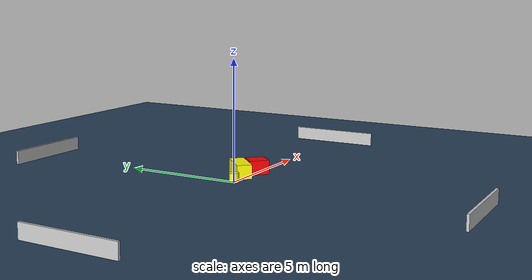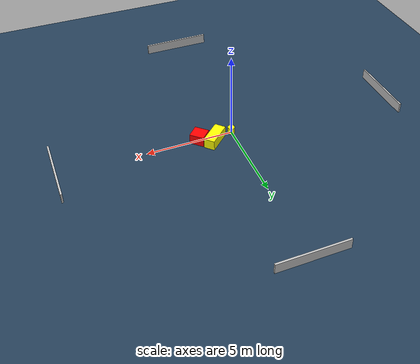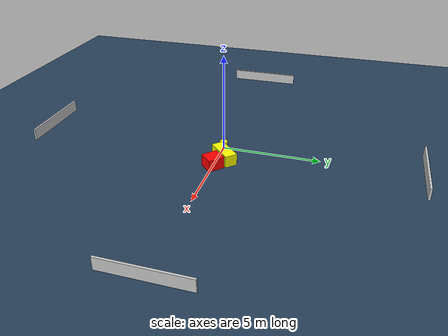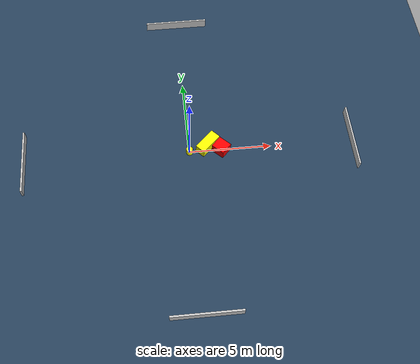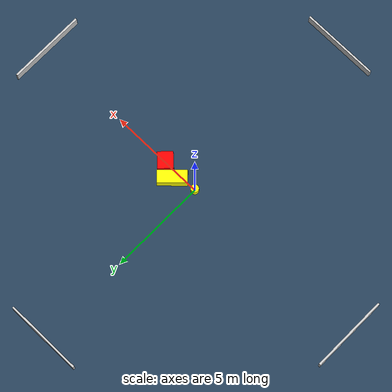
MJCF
<?xml version="1.0" ?>
<mujoco model="generated_environment">
  <option timestep="0.01" integrator="RK4" cone="elliptic"/>
  <default>
    <geom density="1"/>
  </default>
  <asset>
    <texture builtin="gradient" height="3072" name="skybox" rgb1="0.3 0.5 0.7" rgb2="0 0 0" type="skybox" width="512"/>
    <texture builtin="checker" height="300" name="groundplane" rgb1="0.2 0.3 0.4" rgb2="0.1 0.2 0.3" type="2d" width="300"/>
    <material name="groundplane" reflectance="0.2" texrepeat="5 5" texture="groundplane"/>
  </asset>
  <worldbody>
    <light dir="0 0 -1" directional="true" pos="0 0 1.5"/>
    <geom condim="3" friction="0.5 0.005 0.001" material="groundplane" name="floor" pos="0 0 0" size="0 0 0.05" type="plane"/>
    <body name="walls">
      <geom name="wall_1" condim="4" pos="-10.0 0.0 0.3" rgba="0.800000011920929 0.800000011920929 0.800000011920929 1.0" size="0.05 2.0 0.3" type="box"/>
      <geom name="wall_2" condim="4" pos="10.0 0.0 0.3" rgba="0.800000011920929 0.800000011920929 0.800000011920929 1.0" size="0.05 2.0 0.3" type="box"/>
      <geom name="wall_3" condim="4" pos="0.0 -10.0 0.3" rgba="0.800000011920929 0.800000011920929 0.800000011920929 1.0" size="2.0 0.05 0.3" type="box"/>
      <geom name="wall_4" condim="4" pos="0.0 10.0 0.3" rgba="0.800000011920929 0.800000011920929 0.800000011920929 1.0" size="2.0 0.05 0.3" type="box"/>
    </body>
    <body name="robot">
      <joint name="joint_x" type="slide" pos="0 0 0" axis="1 0 0"/>
      <joint name="joint_y" type="slide" pos="0 0 0" axis="0 1 0"/>
      <geom name="robot" type="cylinder" pos="0.0 0.0 0.2" size="0.2 0.2 0.0" mass="5.0" friction="1.0 0.005 0.0001" condim="4" rgba="1.0 1.0 0.0 1.0"/>
    </body>
    <body name="obstacle_1_movable">
      <geom name="obstacle_1_movable" condim="4" pos="1.1451818840823558 0.35679562529091247 0.3" euler="0 0 43.632488461490645" friction="0.0 0.005 0.001" rgba="1.0 1.0 0.0 1.0" size="0.7375907857451209 0.31868071633165085 0.3" type="box" mass="0.1"/>
      <joint type="free"/>
    </body>
    <body name="obstacle_2_static">
      <geom name="obstacle_2_static" condim="4" pos="1.9394649530100423 0.011474195864240547 0.3" euler="0 0 136.3402574607573" friction="0.0 0.005 0.001" rgba="1.0 0.0 0.0 1.0" size="0.4207684683668227 0.3907394567566795 0.3" type="box"/>
    </body>
  </worldbody>
  <actuator>
    <motor name="actuator_x" joint="joint_x" gear="1" ctrlrange="-1 1"/>
    <motor name="actuator_y" joint="joint_y" gear="1" ctrlrange="-1 1"/>
  </actuator>
</mujoco>
